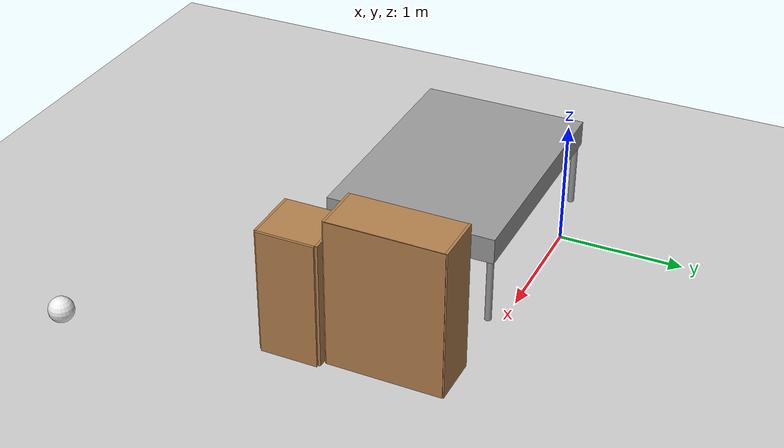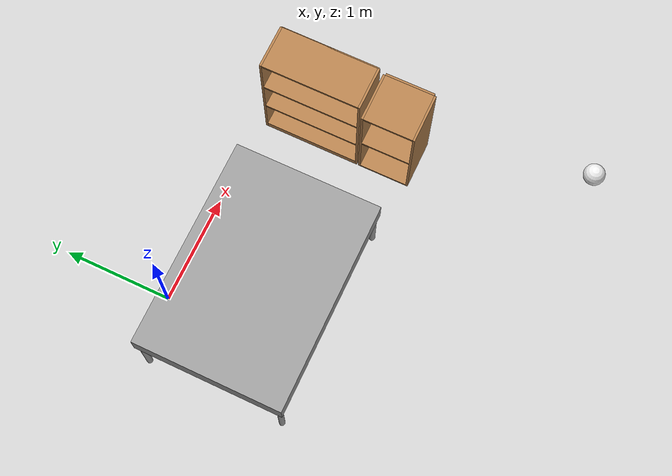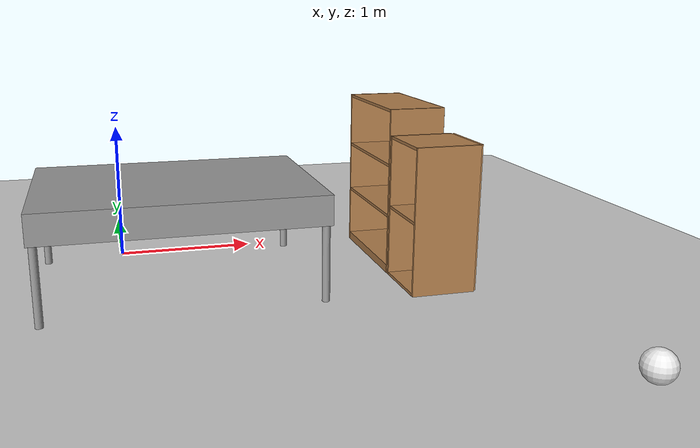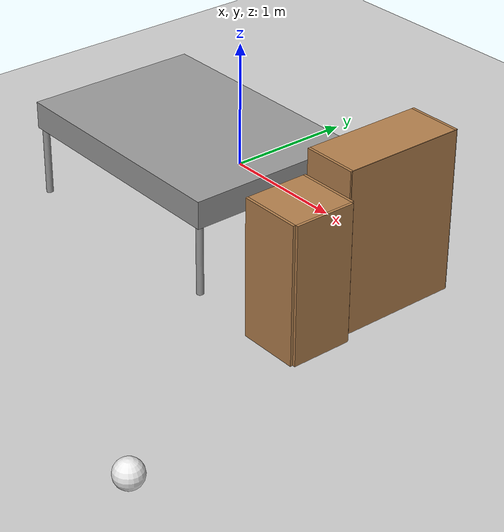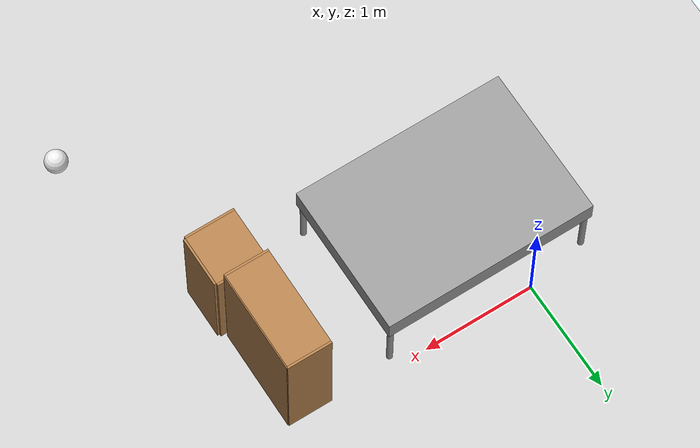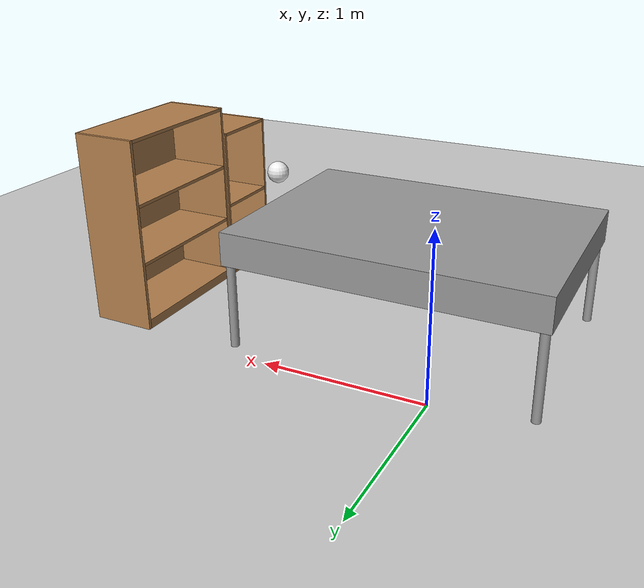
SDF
<sdf version="1.6">
 <world name="default">
  <model name="ground_plane">
   <static>1</static>
   <link name="link">
    <collision name="collision">
     <geometry><plane><normal>0 0 1</normal><size>100 100</size></plane></geometry>
     <surface>
      <contact><collide_bitmask>65535</collide_bitmask></contact>
      <friction><ode><mu>100</mu><mu2>50</mu2></ode></friction>
     </surface>
    </collision>
    <visual name="visual">
     <cast_shadows>0</cast_shadows>
     <geometry><plane><normal>0 0 1</normal><size>100 100</size></plane></geometry>
     <material>
      <script><uri>file://media/materials/scripts/gazebo.material</uri><name>Gazebo/Grey</name></script>
     </material>
    </visual>
   </link>
  </model>
  <model name="bed_clone">
   <link name="link_0">
    <pose>-0.152081 0.31625 0.061083 0 -0 0</pose>
    <inertial>
     <mass>1</mass>
     <inertia>
      <ixx>0.166667</ixx>
      <ixy>0</ixy>
      <ixz>0</ixz>
      <iyy>0.166667</iyy>
      <iyz>0</iyz>
      <izz>0.166667</izz>
     </inertia>
    </inertial>
    <visual name="visual">
     <geometry><box><size>1.905 1.345 0.205</size></box></geometry>
     <material>
      <lighting>1</lighting>
      <script><uri>file://media/materials/scripts/gazebo.material</uri><name>Gazebo/Grey</name></script>
      <shader type="pixel"><normal_map>__default__</normal_map></shader>
      <ambient>0.3 0.3 0.3 1</ambient>
      <diffuse>0.7 0.7 0.7 1</diffuse>
      <specular>0.01 0.01 0.01 1</specular>
      <emissive>0 0 0 1</emissive>
     </material>
    </visual>
    <collision name="collision">
     <geometry><box><size>1.905 1.345 0.205</size></box></geometry>
     <surface>
      <friction>
       <ode><mu>1</mu><mu2>1</mu2><fdir1>0 0 0</fdir1><slip1>0</slip1><slip2>0</slip2></ode>
       <torsional>
        <coefficient>1</coefficient>
        <patch_radius>0</patch_radius>
        <surface_radius>0</surface_radius>
        <use_patch_radius>1</use_patch_radius>
        <ode><slip>0</slip></ode>
       </torsional>
      </friction>
      <bounce><restitution_coefficient>0</restitution_coefficient><threshold>1e+06</threshold></bounce>
      <contact>
       <collide_without_contact>0</collide_without_contact>
       <collide_without_contact_bitmask>1</collide_without_contact_bitmask>
       <collide_bitmask>1</collide_bitmask>
       <ode>
        <soft_cfm>0</soft_cfm>
        <soft_erp>0.2</soft_erp>
        <kp>1e+13</kp>
        <kd>1</kd>
        <max_vel>0.01</max_vel>
        <min_depth>0</min_depth>
       </ode>
       <bullet>
        <split_impulse>1</split_impulse>
        <split_impulse_penetration_threshold>-0.01</split_impulse_penetration_threshold>
        <soft_cfm>0</soft_cfm>
        <soft_erp>0.2</soft_erp>
        <kp>1e+13</kp>
        <kd>1</kd>
       </bullet>
      </contact>
     </surface>
    </collision>
   </link>
   <link name="link_1">
    <pose>0.760419 0.94875 -0.305417 0 -0 0</pose>
    <inertial>
     <mass>1</mass>
     <inertia><ixx>0.145833</ixx><ixy>0</ixy><ixz>0</ixz><iyy>0.145833</iyy><iyz>0</iyz><izz>0.125</izz></inertia>
    </inertial>
    <visual name="visual">
     <geometry><cylinder><radius>0.026479</radius><length>0.528</length></cylinder></geometry>
     <material>
      <lighting>1</lighting>
      <script><uri>file://media/materials/scripts/gazebo.material</uri><name>Gazebo/Grey</name></script>
      <shader type="pixel"><normal_map>__default__</normal_map></shader>
      <ambient>0.3 0.3 0.3 1</ambient>
      <diffuse>0.7 0.7 0.7 1</diffuse>
      <specular>0.01 0.01 0.01 1</specular>
      <emissive>0 0 0 1</emissive>
     </material>
    </visual>
    <collision name="collision">
     <geometry><cylinder><radius>0.026479</radius><length>0.528</length></cylinder></geometry>
     <surface>
      <friction>
       <ode><mu>1</mu><mu2>1</mu2><fdir1>0 0 0</fdir1><slip1>0</slip1><slip2>0</slip2></ode>
       <torsional>
        <coefficient>1</coefficient>
        <patch_radius>0</patch_radius>
        <surface_radius>0</surface_radius>
        <use_patch_radius>1</use_patch_radius>
        <ode><slip>0</slip></ode>
       </torsional>
      </friction>
      <bounce><restitution_coefficient>0</restitution_coefficient><threshold>1e+06</threshold></bounce>
      <contact>
       <collide_without_contact>0</collide_without_contact>
       <collide_without_contact_bitmask>1</collide_without_contact_bitmask>
       <collide_bitmask>1</collide_bitmask>
       <ode>
        <soft_cfm>0</soft_cfm>
        <soft_erp>0.2</soft_erp>
        <kp>1e+13</kp>
        <kd>1</kd>
        <max_vel>0.01</max_vel>
        <min_depth>0</min_depth>
       </ode>
       <bullet>
        <split_impulse>1</split_impulse>
        <split_impulse_penetration_threshold>-0.01</split_impulse_penetration_threshold>
        <soft_cfm>0</soft_cfm>
        <soft_erp>0.2</soft_erp>
        <kp>1e+13</kp>
        <kd>1</kd>
       </bullet>
      </contact>
     </surface>
    </collision>
   </link>
   <link name="link_1_clone">
    <pose>0.760419 -0.31625 -0.305417 0 -0 0</pose>
    <inertial>
     <mass>1</mass>
     <inertia><ixx>0.145833</ixx><ixy>0</ixy><ixz>0</ixz><iyy>0.145833</iyy><iyz>0</iyz><izz>0.125</izz></inertia>
    </inertial>
    <visual name="visual">
     <geometry><cylinder><radius>0.026479</radius><length>0.528</length></cylinder></geometry>
     <material>
      <lighting>1</lighting>
      <script><uri>file://media/materials/scripts/gazebo.material</uri><name>Gazebo/Grey</name></script>
      <shader type="pixel"><normal_map>__default__</normal_map></shader>
      <ambient>0.3 0.3 0.3 1</ambient>
      <diffuse>0.7 0.7 0.7 1</diffuse>
      <specular>0.01 0.01 0.01 1</specular>
      <emissive>0 0 0 1</emissive>
     </material>
    </visual>
    <collision name="collision">
     <geometry><cylinder><radius>0.026479</radius><length>0.528</length></cylinder></geometry>
     <surface>
      <friction>
       <ode><mu>1</mu><mu2>1</mu2><fdir1>0 0 0</fdir1><slip1>0</slip1><slip2>0</slip2></ode>
       <torsional>
        <coefficient>1</coefficient>
        <patch_radius>0</patch_radius>
        <surface_radius>0</surface_radius>
        <use_patch_radius>1</use_patch_radius>
        <ode><slip>0</slip></ode>
       </torsional>
      </friction>
      <bounce><restitution_coefficient>0</restitution_coefficient><threshold>1e+06</threshold></bounce>
      <contact>
       <collide_without_contact>0</collide_without_contact>
       <collide_without_contact_bitmask>1</collide_without_contact_bitmask>
       <collide_bitmask>1</collide_bitmask>
       <ode>
        <soft_cfm>0</soft_cfm>
        <soft_erp>0.2</soft_erp>
        <kp>1e+13</kp>
        <kd>1</kd>
        <max_vel>0.01</max_vel>
        <min_depth>0</min_depth>
       </ode>
       <bullet>
        <split_impulse>1</split_impulse>
        <split_impulse_penetration_threshold>-0.01</split_impulse_penetration_threshold>
        <soft_cfm>0</soft_cfm>
        <soft_erp>0.2</soft_erp>
        <kp>1e+13</kp>
        <kd>1</kd>
       </bullet>
      </contact>
     </surface>
    </collision>
   </link>
   <link name="link_1_clone_clone">
    <pose>-1.06458 0.94875 -0.305417 0 -0 0</pose>
    <inertial>
     <mass>1</mass>
     <inertia><ixx>0.145833</ixx><ixy>0</ixy><ixz>0</ixz><iyy>0.145833</iyy><iyz>0</iyz><izz>0.125</izz></inertia>
    </inertial>
    <visual name="visual">
     <geometry><cylinder><radius>0.026479</radius><length>0.528</length></cylinder></geometry>
     <material>
      <lighting>1</lighting>
      <script><uri>file://media/materials/scripts/gazebo.material</uri><name>Gazebo/Grey</name></script>
      <shader type="pixel"><normal_map>__default__</normal_map></shader>
      <ambient>0.3 0.3 0.3 1</ambient>
      <diffuse>0.7 0.7 0.7 1</diffuse>
      <specular>0.01 0.01 0.01 1</specular>
      <emissive>0 0 0 1</emissive>
     </material>
    </visual>
    <collision name="collision">
     <geometry><cylinder><radius>0.026479</radius><length>0.528</length></cylinder></geometry>
     <surface>
      <friction>
       <ode><mu>1</mu><mu2>1</mu2><fdir1>0 0 0</fdir1><slip1>0</slip1><slip2>0</slip2></ode>
       <torsional>
        <coefficient>1</coefficient>
        <patch_radius>0</patch_radius>
        <surface_radius>0</surface_radius>
        <use_patch_radius>1</use_patch_radius>
        <ode><slip>0</slip></ode>
       </torsional>
      </friction>
      <bounce><restitution_coefficient>0</restitution_coefficient><threshold>1e+06</threshold></bounce>
      <contact>
       <collide_without_contact>0</collide_without_contact>
       <collide_without_contact_bitmask>1</collide_without_contact_bitmask>
       <collide_bitmask>1</collide_bitmask>
       <ode>
        <soft_cfm>0</soft_cfm>
        <soft_erp>0.2</soft_erp>
        <kp>1e+13</kp>
        <kd>1</kd>
        <max_vel>0.01</max_vel>
        <min_depth>0</min_depth>
       </ode>
       <bullet>
        <split_impulse>1</split_impulse>
        <split_impulse_penetration_threshold>-0.01</split_impulse_penetration_threshold>
        <soft_cfm>0</soft_cfm>
        <soft_erp>0.2</soft_erp>
        <kp>1e+13</kp>
        <kd>1</kd>
       </bullet>
      </contact>
     </surface>
    </collision>
   </link>
   <link name="link_1_clone_clone_clone">
    <pose>-1.06458 -0.31625 -0.305417 0 -0 0</pose>
    <inertial>
     <mass>1</mass>
     <inertia><ixx>0.145833</ixx><ixy>0</ixy><ixz>0</ixz><iyy>0.145833</iyy><iyz>0</iyz><izz>0.125</izz></inertia>
    </inertial>
    <visual name="visual">
     <geometry><cylinder><radius>0.026479</radius><length>0.528</length></cylinder></geometry>
     <material>
      <lighting>1</lighting>
      <script><uri>file://media/materials/scripts/gazebo.material</uri><name>Gazebo/Grey</name></script>
      <shader type="pixel"><normal_map>__default__</normal_map></shader>
      <ambient>0.3 0.3 0.3 1</ambient>
      <diffuse>0.7 0.7 0.7 1</diffuse>
      <specular>0.01 0.01 0.01 1</specular>
      <emissive>0 0 0 1</emissive>
     </material>
    </visual>
    <collision name="collision">
     <geometry><cylinder><radius>0.026479</radius><length>0.528</length></cylinder></geometry>
     <surface>
      <friction>
       <ode><mu>1</mu><mu2>1</mu2><fdir1>0 0 0</fdir1><slip1>0</slip1><slip2>0</slip2></ode>
       <torsional>
        <coefficient>1</coefficient>
        <patch_radius>0</patch_radius>
        <surface_radius>0</surface_radius>
        <use_patch_radius>1</use_patch_radius>
        <ode><slip>0</slip></ode>
       </torsional>
      </friction>
      <bounce><restitution_coefficient>0</restitution_coefficient><threshold>1e+06</threshold></bounce>
      <contact>
       <collide_without_contact>0</collide_without_contact>
       <collide_without_contact_bitmask>1</collide_without_contact_bitmask>
       <collide_bitmask>1</collide_bitmask>
       <ode>
        <soft_cfm>0</soft_cfm>
        <soft_erp>0.2</soft_erp>
        <kp>1e+13</kp>
        <kd>1</kd>
        <max_vel>0.01</max_vel>
        <min_depth>0</min_depth>
       </ode>
       <bullet>
        <split_impulse>1</split_impulse>
        <split_impulse_penetration_threshold>-0.01</split_impulse_penetration_threshold>
        <soft_cfm>0</soft_cfm>
        <soft_erp>0.2</soft_erp>
        <kp>1e+13</kp>
        <kd>1</kd>
       </bullet>
      </contact>
     </surface>
    </collision>
   </link>
   <joint name="link_0_JOINT_0" type="fixed">
    <parent>link_0</parent>
    <child>link_1</child>
    <physics>
     <ode><limit><cfm>0</cfm><erp>0.2</erp></limit><suspension><cfm>0</cfm><erp>0.2</erp></suspension></ode>
    </physics>
   </joint>
   <joint name="link_0_JOINT_1" type="fixed">
    <parent>link_0</parent>
    <child>link_1_clone</child>
    <physics>
     <ode><limit><cfm>0</cfm><erp>0.2</erp></limit><suspension><cfm>0</cfm><erp>0.2</erp></suspension></ode>
    </physics>
   </joint>
   <joint name="link_0_JOINT_2" type="fixed">
    <parent>link_0</parent>
    <child>link_1_clone_clone</child>
    <physics>
     <ode><limit><cfm>0</cfm><erp>0.2</erp></limit><suspension><cfm>0</cfm><erp>0.2</erp></suspension></ode>
    </physics>
   </joint>
   <joint name="link_0_JOINT_3" type="fixed">
    <parent>link_0</parent>
    <child>link_1_clone_clone_clone</child>
    <pose>-0.01 0 0 0 -0 0</pose>
    <physics>
     <ode><limit><cfm>0</cfm><erp>0.2</erp></limit><suspension><cfm>0</cfm><erp>0.2</erp></suspension></ode>
    </physics>
   </joint>
   <static>0</static>
   <pose>0.509651 -1.06026 0.569417 -3e-06 -0 -0.000779</pose>
  </model>
  <model name="bookshelf_clone">
   <static>1</static>
   <link name="link">
    <inertial><mass>1</mass></inertial>
    <collision name="back">
     <pose>0 0.005 0.6 0 -0 0</pose>
     <geometry><box><size>0.9 0.01 1.2</size></box></geometry>
    </collision>
    <visual name="visual1">
     <pose>0 0.005 0.6 0 -0 0</pose>
     <geometry><box><size>0.9 0.01 1.2</size></box></geometry>
     <material>
      <script><uri>file://media/materials/scripts/gazebo.material</uri><name>Gazebo/Wood</name></script>
     </material>
    </visual>
    <collision name="left_side">
     <pose>0.45 -0.195 0.6 0 -0 0</pose>
     <geometry><box><size>0.02 0.4 1.2</size></box></geometry>
    </collision>
    <visual name="visual2">
     <pose>0.45 -0.195 0.6 0 -0 0</pose>
     <geometry><box><size>0.02 0.4 1.2</size></box></geometry>
     <material>
      <script><uri>file://media/materials/scripts/gazebo.material</uri><name>Gazebo/Wood</name></script>
     </material>
    </visual>
    <collision name="right_side">
     <pose>-0.45 -0.195 0.6 0 -0 0</pose>
     <geometry><box><size>0.02 0.4 1.2</size></box></geometry>
    </collision>
    <visual name="visual3">
     <pose>-0.45 -0.195 0.6 0 -0 0</pose>
     <geometry><box><size>0.02 0.4 1.2</size></box></geometry>
     <material>
      <script><uri>file://media/materials/scripts/gazebo.material</uri><name>Gazebo/Wood</name></script>
     </material>
    </visual>
    <collision name="bottom">
     <pose>0 -0.195 0.03 0 -0 0</pose>
     <geometry><box><size>0.88 0.4 0.06</size></box></geometry>
    </collision>
    <visual name="visual4">
     <pose>0 -0.195 0.03 0 -0 0</pose>
     <geometry><box><size>0.88 0.4 0.06</size></box></geometry>
     <material>
      <script><uri>file://media/materials/scripts/gazebo.material</uri><name>Gazebo/Wood</name></script>
     </material>
    </visual>
    <collision name="top">
     <pose>0 -0.195 1.19 0 -0 0</pose>
     <geometry><box><size>0.88 0.4 0.02</size></box></geometry>
    </collision>
    <visual name="visual5">
     <pose>0 -0.195 1.19 0 -0 0</pose>
     <geometry><box><size>0.88 0.4 0.02</size></box></geometry>
     <material>
      <script><uri>file://media/materials/scripts/gazebo.material</uri><name>Gazebo/Wood</name></script>
     </material>
    </visual>
    <collision name="low_shelf">
     <pose>0 -0.195 0.43 0 -0 0</pose>
     <geometry><box><size>0.88 0.4 0.02</size></box></geometry>
    </collision>
    <visual name="visual6">
     <pose>0 -0.195 0.43 0 -0 0</pose>
     <geometry><box><size>0.88 0.4 0.02</size></box></geometry>
     <material>
      <script><uri>file://media/materials/scripts/gazebo.material</uri><name>Gazebo/Wood</name></script>
     </material>
    </visual>
    <collision name="high_shelf">
     <pose>0 -0.195 0.8 0 -0 0</pose>
     <geometry><box><size>0.88 0.4 0.02</size></box></geometry>
    </collision>
    <visual name="visual7">
     <pose>0 -0.195 0.8 0 -0 0</pose>
     <geometry><box><size>0.88 0.4 0.02</size></box></geometry>
     <material>
      <script><uri>file://media/materials/scripts/gazebo.material</uri><name>Gazebo/Wood</name></script>
     </material>
    </visual>
   </link>
   <pose>2.2485 -0.502038 0 0 0 -1.57404</pose>
  </model>
  <model name="cabinet_clone_1">
   <static>1</static>
   <link name="cabinet_bottom_plate">
    <inertial>
     <pose>0 0 -1 0 -0 0</pose>
     <inertia><ixx>2.05</ixx><ixy>0</ixy><ixz>0</ixz><iyy>2.05</iyy><iyz>0</iyz><izz>2.05</izz></inertia>
     <mass>25</mass>
    </inertial>
    <collision name="cabinet_bottom_plate_geom">
     <pose>0 0 0.01 0 -0 0</pose>
     <geometry><box><size>0.45 0.45 0.02</size></box></geometry>
    </collision>
    <visual name="cabinet_bottom_plate_geom_visual">
     <pose>0 0 0.01 0 -0 0</pose>
     <geometry><box><size>0.45 0.45 0.02</size></box></geometry>
     <material>
      <script><uri>file://media/materials/scripts/gazebo.material</uri><name>Gazebo/Wood</name></script>
     </material>
    </visual>
    <collision name="cabinet_bottom_plate_geom_cabinet_back_plate">
     <pose>0.235 0 0.51 0 -0 0</pose>
     <geometry><box><size>0.02 0.45 1.02</size></box></geometry>
    </collision>
    <visual name="cabinet_bottom_plate_geom_cabinet_back_plate_visual">
     <pose>0.235 0 0.51 0 -0 0</pose>
     <geometry><box><size>0.02 0.45 1.02</size></box></geometry>
     <material>
      <script><uri>file://media/materials/scripts/gazebo.material</uri><name>Gazebo/Wood</name></script>
     </material>
    </visual>
    <collision name="cabinet_bottom_plate_geom_cabinet_left_plate">
     <pose>0 0.235 0.51 0 -0 0</pose>
     <geometry><box><size>0.45 0.02 1.02</size></box></geometry>
    </collision>
    <visual name="cabinet_bottom_plate_geom_cabinet_left_plate_visual">
     <pose>0 0.235 0.51 0 -0 0</pose>
     <geometry><box><size>0.45 0.02 1.02</size></box></geometry>
     <material>
      <script><uri>file://media/materials/scripts/gazebo.material</uri><name>Gazebo/Wood</name></script>
     </material>
    </visual>
    <collision name="cabinet_bottom_plate_geom_cabinet_middle_plate">
     <pose>0 0 0.51 0 -0 0</pose>
     <geometry><box><size>0.45 0.45 0.02</size></box></geometry>
    </collision>
    <visual name="cabinet_bottom_plate_geom_cabinet_middle_plate_visual">
     <pose>0 0 0.51 0 -0 0</pose>
     <geometry><box><size>0.45 0.45 0.02</size></box></geometry>
     <material>
      <script><uri>file://media/materials/scripts/gazebo.material</uri><name>Gazebo/Wood</name></script>
     </material>
    </visual>
    <collision name="cabinet_bottom_plate_geom_cabinet_right_plate">
     <pose>0 -0.235 0.51 0 -0 0</pose>
     <geometry><box><size>0.45 0.02 1.02</size></box></geometry>
    </collision>
    <visual name="cabinet_bottom_plate_geom_cabinet_right_plate_visual">
     <pose>0 -0.235 0.51 0 -0 0</pose>
     <geometry><box><size>0.45 0.02 1.02</size></box></geometry>
     <material>
      <script><uri>file://media/materials/scripts/gazebo.material</uri><name>Gazebo/Wood</name></script>
     </material>
    </visual>
    <collision name="cabinet_bottom_plate_geom_cabinet_top_plate">
     <pose>0 0 1.01 0 -0 0</pose>
     <geometry><box><size>0.45 0.45 0.02</size></box></geometry>
    </collision>
    <visual name="cabinet_bottom_plate_geom_cabinet_top_plate_visual">
     <pose>0 0 1.01 0 -0 0</pose>
     <geometry><box><size>0.45 0.45 0.02</size></box></geometry>
     <material>
      <script><uri>file://media/materials/scripts/gazebo.material</uri><name>Gazebo/Wood</name></script>
     </material>
    </visual>
   </link>
   <pose>2.07678 -1.2186 0 0 -0 0</pose>
  </model>
  <model name="my_ball">
   <link name="link_0">
    <inertial>
     <mass>1</mass>
     <inertia><ixx>0.1</ixx><ixy>0</ixy><ixz>0</ixz><iyy>0.1</iyy><iyz>0</iyz><izz>0.1</izz></inertia>
    </inertial>
    <visual name="visual">
     <geometry><sphere><radius>0.1</radius></sphere></geometry>
     <material>
      <lighting>1</lighting>
      <script><uri>file://media/materials/scripts/gazebo.material</uri><name>Gazebo/White</name></script>
      <shader type="pixel"><normal_map>__default__</normal_map></shader>
      <ambient>1 1 1 1</ambient>
      <diffuse>1 1 1 1</diffuse>
      <specular>1 1 1 1</specular>
      <emissive>1 1 1 1</emissive>
     </material>
    </visual>
    <collision name="collision">
     <geometry><sphere><radius>0.1</radius></sphere></geometry>
     <surface>
      <friction>
       <ode><mu>1</mu><mu2>1</mu2><fdir1>0 0 0</fdir1><slip1>0</slip1><slip2>0</slip2></ode>
       <torsional>
        <coefficient>1</coefficient>
        <patch_radius>0</patch_radius>
        <surface_radius>0</surface_radius>
        <use_patch_radius>1</use_patch_radius>
        <ode><slip>0</slip></ode>
       </torsional>
      </friction>
      <bounce><restitution_coefficient>0</restitution_coefficient><threshold>1e+06</threshold></bounce>
      <contact>
       <collide_without_contact>0</collide_without_contact>
       <collide_without_contact_bitmask>1</collide_without_contact_bitmask>
       <collide_bitmask>1</collide_bitmask>
       <ode>
        <soft_cfm>0</soft_cfm>
        <soft_erp>0.2</soft_erp>
        <kp>1e+13</kp>
        <kd>1</kd>
        <max_vel>0.01</max_vel>
        <min_depth>0</min_depth>
       </ode>
       <bullet>
        <split_impulse>1</split_impulse>
        <split_impulse_penetration_threshold>-0.01</split_impulse_penetration_threshold>
        <soft_cfm>0</soft_cfm>
        <soft_erp>0.2</soft_erp>
        <kp>1e+13</kp>
        <kd>1</kd>
       </bullet>
      </contact>
     </surface>
    </collision>
   </link>
   <static>0</static>
   <pose>2.63219 -2.94676 0.1 0 -0 0</pose>
  </model>
 </world>
</sdf>
